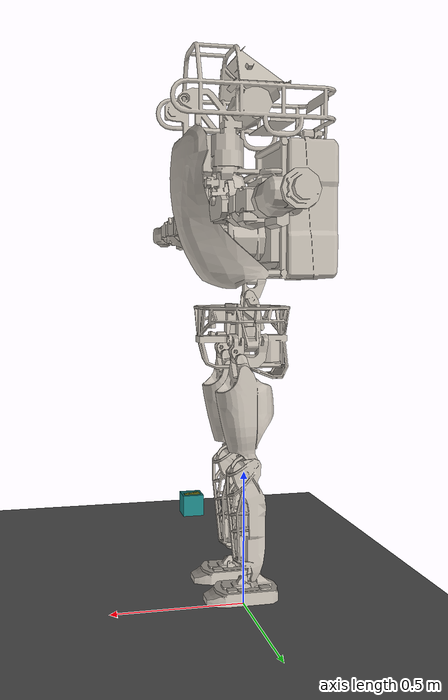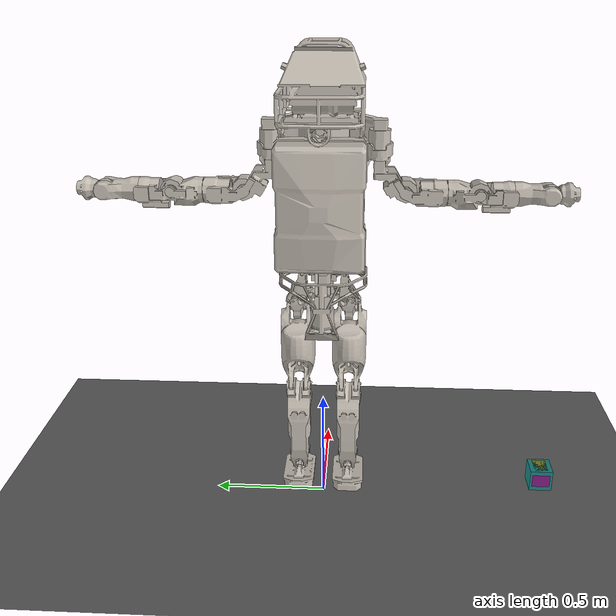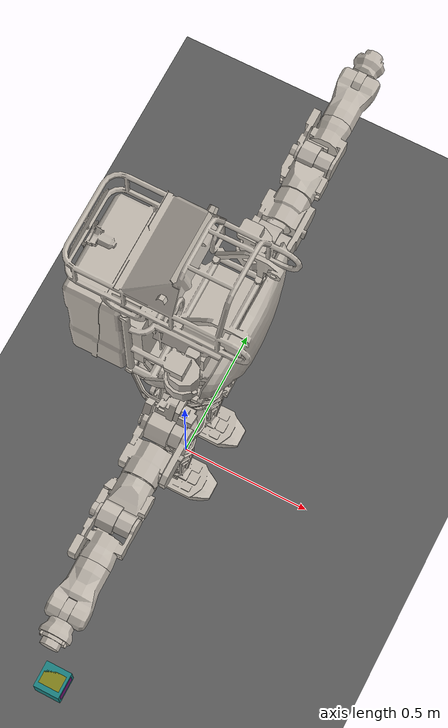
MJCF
<mujoco model="atlas">
    <compiler angle="radian" meshdir="meshes" autolimits="true" />
    <size njmax="5000" nconmax="10000" />

    <default>
        <light castshadow="false" />
        <default class="visual">
            <geom contype="0" conaffinity="0" group="1" type="mesh" euler="1.57 0 0" />
        </default>
        <default class="collision">
            <geom contype="1" conaffinity="1" friction="1.0 0.3 0.3" rgba="0.5 0.6 0.7 0"
                margin="0.001" group="0" euler="1.57 0 0" />
        </default>
        <joint damping="0.01" armature="0.01" frictionloss="0.01" />
    </default>
    <visual>
        <rgba com="0.502 1.0 0 1.0" fog="0 0 0 1" contactpoint="0.4 0.4 0.4 0.8"
            contactforce="0.0 0.9 0.9 0.5" />
        <scale com="0.05" forcewidth="0.04" contactwidth="0.10" contactheight="0.005"
            selectpoint="0.01" />
        <map force="0.005" />
    </visual>

    <asset>
        <texture type="2d" name="atlas_utorso" file="torso_diffuse_unplugged.png" />
        <material name="atlas_utorso" texture="atlas_utorso" />
        <texture type="2d" name="atlas_leg" file="right_leg_diffuse_unplugged.png" />
        <material name="atlas_leg" texture="atlas_leg" />

        <texture type="2d" name="extremities" file="extremities_diffuse_unplugged.png" />
        <material name="extremities" texture="extremities" />

        <mesh name="l_clav" file="l_clav.dae.obj" />
        <mesh name="l_foot" file="l_foot.dae.obj" />
        <mesh name="l_larm" file="l_larm.dae.obj" />
        <mesh name="l_hand" file="l_hand.dae.obj" />
        <mesh name="l_lglut" file="l_lglut.dae.obj" />
        <mesh name="l_lleg" file="l_lleg.dae.obj" />
        <mesh name="l_scap" file="l_scap.dae.obj" />
        <mesh name="l_talus" file="l_talus.dae.obj" />
        <mesh name="l_uarm" file="l_uarm.dae.obj" />
        <mesh name="l_farm" file="l_farm.dae.obj" />
        <mesh name="l_uglut" file="l_uglut.dae.obj" />
        <mesh name="l_uleg" file="l_uleg.dae.obj" />
        <mesh name="ltorso" file="ltorso.dae.obj" />
        <mesh name="mtorso" file="mtorso.dae.obj" />
        <mesh name="pelvis" file="pelvis.dae.obj" />
        <mesh name="r_clav" file="r_clav.dae.obj" />
        <mesh name="r_foot" file="r_foot.dae.obj" />
        <mesh name="r_larm" file="r_larm.dae.obj" />
        <mesh name="r_hand" file="r_hand.dae.obj" />
        <mesh name="r_lglut" file="r_lglut.dae.obj" />
        <mesh name="r_lleg" file="r_lleg.dae.obj" />
        <mesh name="r_scap" file="r_scap.dae.obj" />
        <mesh name="r_talus" file="r_talus.dae.obj" />
        <mesh name="r_uarm" file="r_uarm.dae.obj" />
        <mesh name="r_farm" file="r_farm.dae.obj" />
        <mesh name="r_uglut" file="r_uglut.dae.obj" />
        <mesh name="r_uleg" file="r_uleg.dae.obj" />
        <mesh name="utorso" file="utorso.dae.obj" />

        <texture type="skybox" builtin="gradient" width="512" height="512" rgb1=".4 .6 .8"
            rgb2="0 0 0" />
        <texture name="texgeom" type="cube" builtin="flat" mark="cross" width="128"
            height="128"
            rgb1="0.6 0.6 0.6" rgb2="0.6 0.6 0.6" markrgb="1 1 1" />
        <texture name="texplane" type="2d" builtin="checker" rgb1=".4 .4 .4" rgb2=".6 .6 .6"
            width="512" height="512" />
        <material name='MatPlane' reflectance='0.3' texture="texplane" texrepeat="1 1"
            texuniform="true"
            rgba=".7 .7 .7 1" />
    </asset>
    <option timestep="0.0005" />

    <worldbody>
        <light directional="true" diffuse=".8 .8 .8" pos="0 0 10" dir="0 0 -10" />
        <geom name="floor" pos="0 0 0" type="plane" size="0 0 1" material="MatPlane" />
        <camera name="track" mode="targetbody" target="pelvis" pos="0 -1.3 1.6"
            xyaxes="1 0 0 0 0.707 0.707" />

        <body name="pelvis" pos="0 0 1">
            <joint type="free" limited='false' damping="0" stiffness="0" armature="0" />

            <inertial pos="0.0111 0 0.0271" quat="0.698584 0.713914 0.0424837 -0.0224092"
                mass="17.882" diaginertia="0.124488 0.116646 0.0957666" />
            <geom class="visual" type="mesh" mesh="pelvis" material="extremities" />
            <site name="imu" pos="0 0 0" />

            <body name="ltorso" pos="-0.0125 0 0">
                <inertial pos="-0.0112984 -3.15366e-06 0.0746835"
                    quat="0.997071 0.000128212 0.076485 -0.00012406" mass="2.409"
                    diaginertia="0.003962 0.00341694 0.00169212" />
                <geom class="visual" type="mesh" mesh="ltorso" material="extremities" />
                <body name="mtorso" pos="0 0 0.162">
                    <inertial pos="-0.00816266 -0.0131245 0.0305974"
                        quat="0.108378 0.49314 0.746335 0.433648" mass="0.69"
                        diaginertia="0.000536243 0.000487378 0.000358057" />
                    <geom class="visual" type="mesh" mesh="mtorso" material="atlas_utorso" />
                    <body name="utorso" pos="0 0 0.05">
                        <inertial pos="-0.0571559 4.12307e-05 0.306477"
                            quat="0.945702 -0.00432926 -0.324953 0.00585631" mass="64.03"
                            diaginertia="1.74 1.54023 1.06239" />
                        <geom class="visual" mesh="utorso" material="atlas_utorso" />
                        <geom class="collision" type="box" size="0.265 0.265 0.17"
                            pos="-0.03 0 0.23" />
                        <body name="l_clav" pos="0.1406 0.2256 0.4776">
                            <inertial pos="0 0.048 -0.084"
                                quat="0.684588 -0.177029 0.177029 0.684588" mass="3.45"
                                diaginertia="0.011217 0.011 0.00178301" />
                            <joint name="l_arm_shz" pos="0 0 0" axis="0 0 1" limited="true"
                                range="-1.5708 0.785398" damping="0.1" />
                            <geom class="visual" type="mesh" mesh="l_clav" material="extremities" />
                            <body name="l_scap" pos="0 0.11 -0.245">
                                <inertial pos="0 0 0" quat="0.5 0.5 0.5 0.5" mass="3.012"
                                    diaginertia="0.00583 0.00583 0.00319" />
                                <joint name="l_arm_shx" pos="0 0 0" axis="1 0 0" limited="true"
                                    range="-1.5708 1.5708" damping="0.1" />
                                <geom class="visual" type="mesh" mesh="l_scap"
                                    material="extremities" />
                                <body name="l_uarm" pos="0 0.187 -0.016">
                                    <inertial pos="0 -0.065 0" quat="0.707107 0.707107 0 0"
                                        mass="3.388" diaginertia="0.00656 0.00656 0.00358" />
                                    <joint name="l_arm_ely" pos="0 0 0" axis="0 1 0" limited="true"
                                        range="0 3.14159" damping="0.1" />
                                    <geom class="visual" type="mesh" mesh="l_uarm"
                                        material="extremities" />
                                    <body name="l_larm" pos="0 0.119 0.0092">
                                        <inertial pos="0 0 0" quat="0.5 0.5 0.5 0.5" mass="2.509"
                                            diaginertia="0.00446 0.00446 0.00265" />
                                        <joint name="l_arm_elx" pos="0 0 0" axis="1 0 0"
                                            limited="true" range="0 2.35619" damping="0.1" />
                                        <geom class="visual" type="mesh" mesh="l_larm"
                                            material="extremities" />
                                        <geom class="collision" type="cylinder" size="0.05 0.15"
                                            pos="0 0.15 0" />
                                        <body name="l_ufarm" pos="0 0.29955 -0.00921">
                                            <inertial pos="0 -0.2 0" quat="0.707107 0.707107 0 0"
                                                mass="2.12" diaginertia="0.006 0.006 0.003" />
                                            <joint name="l_arm_wry" pos="0 0 0" axis="0 1 0"
                                                limited="true" range="-3.011 3.011" damping="0.1" />
                                            <geom class="visual" type="mesh" mesh="l_farm"
                                                material="extremities" />
                                            <body name="l_lfarm" pos="0 0 0">
                                                <inertial pos="0 -0.07 0"
                                                    quat="0.707107 0.707107 0 0" mass="2.65"
                                                    diaginertia="0.007 0.007 0.004" />
                                                <joint name="l_arm_wrx" pos="0 0 0" axis="1 0 0"
                                                    limited="true" range="-1.7628 1.7628"
                                                    damping="0.1" />
                                                <geom class="visual" type="mesh" mesh="l_hand"
                                                    material="extremities" />
                                                <body name="l_hand" pos="0 0 0">
                                                    <inertial pos="0 0.06 0" quat="0.5 0.5 0.5 0.5"
                                                        mass="0.53"
                                                        diaginertia="0.000446 0.000446 0.000265" />
                                                    <joint name="l_arm_wry2" pos="0 0 0"
                                                        axis="0 1 0" limited="true"
                                                        range="-2.9671 2.9671" damping="0.1" />
                                                </body>
                                            </body>
                                        </body>
                                    </body>
                                </body>
                            </body>
                        </body>
                        <body name="r_clav" pos="0.1406 -0.2256 0.4776">
                            <inertial pos="0 -0.048 -0.084"
                                quat="0.684588 0.177029 -0.177029 0.684588" mass="3.45"
                                diaginertia="0.011217 0.011 0.00178301" />
                            <joint name="r_arm_shz" pos="0 0 0" axis="0 0 1" limited="true"
                                range="-0.785398 1.5708" damping="0.1" />
                            <geom class="visual" type="mesh" mesh="r_clav" material="extremities" />
                            <body name="r_scap" pos="0 -0.11 -0.245">
                                <inertial pos="0 0 0" quat="0.5 0.5 0.5 0.5" mass="3.012"
                                    diaginertia="0.00583 0.00583 0.00319" />
                                <joint name="r_arm_shx" pos="0 0 0" axis="1 0 0" limited="true"
                                    range="-1.5708 1.5708" damping="0.1" />
                                <geom class="visual" type="mesh" mesh="r_scap"
                                    material="extremities" />
                                <body name="r_uarm" pos="0 -0.187 -0.016">
                                    <inertial pos="0 0.065 0" quat="0.707107 0.707107 0 0"
                                        mass="3.388" diaginertia="0.00656 0.00656 0.00358" />
                                    <joint name="r_arm_ely" pos="0 0 0" axis="0 1 0" limited="true"
                                        range="0 3.14159" damping="0.1" />
                                    <geom class="visual" type="mesh" mesh="r_uarm"
                                        material="extremities" />
                                    <body name="r_larm" pos="0 -0.119 0.0092">
                                        <inertial pos="0 0 0" quat="0.5 0.5 0.5 0.5" mass="2.509"
                                            diaginertia="0.00446 0.00446 0.00265" />
                                        <joint name="r_arm_elx" pos="0 0 0" axis="1 0 0"
                                            limited="true" range="-2.35619 0" damping="0.1" />
                                        <geom class="visual" type="mesh" mesh="r_larm"
                                            material="extremities" />
                                        <geom class="collision" type="cylinder" size="0.05 0.15"
                                            pos="0 -0.15 0" />
                                        <body name="r_ufarm" pos="0 -0.29955 -0.00921">
                                            <inertial pos="0 0.2 0" quat="0.707107 0.707107 0 0"
                                                mass="2.12" diaginertia="0.006 0.006 0.003" />
                                            <joint name="r_arm_wry" pos="0 0 0" axis="0 1 0"
                                                limited="true" range="-3.011 3.011" damping="0.1" />
                                            <geom class="visual" type="mesh" mesh="r_farm"
                                                material="extremities" />
                                            <body name="r_lfarm" pos="0 0 0">
                                                <inertial pos="0 0.07 0"
                                                    quat="0.707107 0.707107 0 0" mass="2.65"
                                                    diaginertia="0.007 0.007 0.004" />
                                                <joint name="r_arm_wrx" pos="0 0 0" axis="1 0 0"
                                                    limited="true" range="-1.7628 1.7628"
                                                    damping="0.1" />
                                                <geom class="visual" type="mesh" mesh="r_hand"
                                                    material="extremities" />
                                                <body name="r_hand" pos="0 0 0">
                                                    <inertial pos="0 -0.06 0" quat="0.5 0.5 0.5 0.5"
                                                        mass="0.53"
                                                        diaginertia="0.000446 0.000446 0.000265" />
                                                    <joint name="r_arm_wry2" pos="0 0 0"
                                                        axis="0 1 0" limited="true"
                                                        range="-2.9671 2.9671" damping="0.1" />
                                                </body>
                                            </body>
                                        </body>
                                    </body>
                                </body>
                            </body>
                        </body>
                    </body>
                </body>
            </body>
            <body name="l_uglut" pos="0 0.089 0">
                <inertial pos="0.00529262 -0.00344732 0.00313046"
                    quat="0.999122 -7.72169e-05 0.0419028 -0.000305187" mass="0.648"
                    diaginertia="0.000745109 0.000688179 0.000410071" />
                <joint name="l_leg_hpz" pos="0 0 0" axis="0 0 1" limited="true"
                    range="-0.174358 0.786794" damping="0.1" />
                <geom class="visual" type="mesh" mesh="l_uglut" material="extremities" />
                <body name="l_lglut" pos="0 0 0">
                    <inertial pos="0.0133341 0.0170484 -0.0312052"
                        quat="0.353465 0.600383 0.388609 0.602981" mass="0.866"
                        diaginertia="0.00133867 0.000995812 0.000690275" />
                    <joint name="l_leg_hpx" pos="0 0 0" axis="1 0 0" limited="true"
                        range="-0.523599 0.523599" damping="0.1" />
                    <geom class="visual" type="mesh" mesh="l_lglut" material="extremities" />
                    <body name="l_uleg" pos="0.05 0.0225 -0.066">
                        <inertial pos="0 0 -0.21" mass="9.209" diaginertia="0.09 0.09 0.02" />
                        <joint name="l_leg_hpy" pos="0 0 0" axis="0 1 0" limited="true"
                            range="-1.61234 0.65764" damping="0.1" />
                        <geom class="visual" mesh="l_uleg" material="extremities" />
                        <geom class="collision" type="ellipsoid" size="0.12 0.08 0.2" euler="0 0 0"
                            pos="-0.03 0 -0.17" />
                        <body name="l_lleg" pos="-0.05 0 -0.374">
                            <inertial pos="0.001 0 -0.187" quat="0.999751 0 0.0223266 0"
                                mass="5.479" diaginertia="0.0771341 0.076 0.00986594" />
                            <joint name="l_leg_kny" pos="0 0 0" axis="0 1 0" limited="true"
                                range="0 2.35637" damping="0.1" />
                            <geom class="visual" type="mesh" mesh="l_lleg" material="extremities" />
                            <geom class="collision" type="ellipsoid" size="0.07 0.07 0.2"
                                euler="0 0 0" pos="0.02 0 -0.20" />
                            <body name="l_talus" pos="0 0 -0.422">
                                <inertial pos="0 0 0" quat="0.5 0.5 -0.5 0.5" mass="0.125"
                                    diaginertia="1.30101e-05 1.01674e-05 8.42775e-06" />
                                <joint name="l_leg_aky" pos="0 0 0" axis="0 1 0" limited="true"
                                    range="-1 0.7" damping="0.1" />
                                <geom class="visual" type="mesh" mesh="l_talus"
                                    material="extremities" />
                                <body name="l_foot" pos="0 0 0">
                                    <inertial pos="0.027 0 -0.067" quat="0 0.707107 0 0.707107"
                                        mass="2.05" diaginertia="0.008 0.007 0.002" />
                                    <joint name="l_leg_akx" pos="0 0 0" axis="1 0 0" limited="true"
                                        range="-0.8 0.8" damping="0.1" />
                                    <geom class="visual" type="mesh" mesh="l_foot"
                                        material="extremities" />
                                    <geom class="collision" type="box" size="0.115 0.065 0.01"
                                        pos="0.03 0 -0.0641" euler="0 0 0" />
                                    <site name="lf_tc" type="box" size="0.13 0.07 0.01"
                                        pos="0.04 0 -0.0675"
                                        rgba="0 1 0 0" />
                                </body>
                            </body>
                        </body>
                    </body>
                </body>
            </body>
            <body name="r_uglut" pos="0 -0.089 0">
                <inertial pos="0.00529262 0.00344732 0.00313046"
                    quat="0.999122 7.72169e-05 0.0419028 0.000305187" mass="0.648"
                    diaginertia="0.000745109 0.000688179 0.000410071" />
                <joint name="r_leg_hpz" pos="0 0 0" axis="0 0 1" limited="true"
                    range="-0.786794 0.174358" damping="0.1" />
                <geom class="visual" type="mesh" mesh="r_uglut" material="extremities" />
                <body name="r_lglut" pos="0 0 0">
                    <inertial pos="0.0133341 -0.0170484 -0.0312052"
                        quat="0.602981 0.388609 0.600383 0.353465" mass="0.866"
                        diaginertia="0.00133867 0.000995812 0.000690275" />
                    <joint name="r_leg_hpx" pos="0 0 0" axis="1 0 0" limited="true"
                        range="-0.523599 0.523599" damping="0.1" />
                    <geom class="visual" type="mesh" mesh="r_lglut" material="extremities" />
                    <body name="r_uleg" pos="0.05 -0.0225 -0.066">
                        <inertial pos="0 0 -0.21" mass="9.209" diaginertia="0.09 0.09 0.02" />
                        <joint name="r_leg_hpy" pos="0 0 0" axis="0 1 0" limited="true"
                            range="-1.61234 0.65764" damping="0.1" />
                        <geom class="visual" mesh="r_uleg" euler="1.57 0 0" material="atlas_leg" />
                        <geom class="collision" type="ellipsoid" size="0.12 0.08 0.2" euler="0 0 0"
                            pos="-0.03 0 -0.17" />
                        <body name="r_lleg" pos="-0.05 0 -0.374">
                            <inertial pos="0.001 0 -0.187" quat="0.999751 0 0.0223266 0"
                                mass="5.479" diaginertia="0.0771341 0.076 0.00986594" />
                            <joint name="r_leg_kny" pos="0 0 0" axis="0 1 0" limited="true"
                                range="0 2.35637" damping="0.1" />
                            <geom class="visual" type="mesh" mesh="r_lleg" material="extremities" />
                            <geom class="collision" type="ellipsoid" size="0.07 0.07 0.2"
                                euler="0 0 0" pos="0.02 0 -0.20" />

                            <body name="r_talus" pos="0 0 -0.422">
                                <inertial pos="0 0 0" quat="0.5 0.5 -0.5 0.5" mass="0.125"
                                    diaginertia="1.30101e-05 1.01674e-05 8.42775e-06" />
                                <joint name="r_leg_aky" pos="0 0 0" axis="0 1 0" limited="true"
                                    range="-1 0.7" damping="0.1" />
                                <geom class="visual" type="mesh" mesh="r_talus"
                                    material="extremities" />
                                <body name="r_foot" pos="0 0 0">
                                    <inertial pos="0.027 0 -0.067" quat="0 0.707107 0 0.707107"
                                        mass="2.05" diaginertia="0.008 0.007 0.002" />
                                    <joint name="r_leg_akx" pos="0 0 0" axis="1 0 0" limited="true"
                                        range="-0.8 0.8" damping="0.1" />
                                    <geom class="collision" type="box" size="0.115 0.065 0.01"
                                        pos="0.03 0 -0.0641" euler="0 0 0" />
                                    <geom class="visual" type="mesh" mesh="r_foot"
                                        material="extremities" />
                                    <site name="rf_tc" type="box" size="0.13 0.07 0.01"
                                        pos="0.04 0 -0.0675"
                                        rgba="0 1 0 0" />
                                </body>
                            </body>
                        </body>
                    </body>
                </body>
            </body>
        </body>

        <body name="throw_box1" pos="0.0 -1.0 0.12" gravcomp="0">
            <inertial pos="0 0 0" quat="1 0 0 0" mass="8.607" diaginertia="0.0012 0.0012 0.0012" />
            <geom class="collision" size="0.05 0.05 0.05" type="box" rgba="0.1 0.5 0.5 1" />
            <joint name="throw_box1" type="free" />
        </body>

        <body name="throw_box2" pos="0.0 -1.0 0.12" gravcomp="0">
            <inertial pos="0 0 0" quat="1 0 0 0" mass="8.607" diaginertia="0.0012 0.0012 0.0012" />
            <geom class="collision" size="0.05 0.03 0.04" type="box" rgba="0.5 0.1 0.5 1" />
            <joint name="throw_box2" type="free" />
        </body>

        <body name="throw_box3" pos="0.0 -1.0 0.12" gravcomp="0">
            <inertial pos="0 0 0" quat="1 0 0 0" mass="8.607" diaginertia="0.0012 0.0012 0.0012" />
            <geom class="collision" size="0.04 0.05 0.03" type="box" rgba="0.5 0.5 0.1 1" />
            <joint name="throw_box3" type="free" />
        </body>

        <body name="throw_box4" pos="0.0 -1.0 0.12" gravcomp="0">
            <inertial pos="0 0 0" quat="1 0 0 0" mass="8.607" diaginertia="0.0012 0.0012 0.0012" />
            <geom class="collision" size="0.04 0.04 0.04" type="box" rgba="0.9 0.5 0.9 1" />
            <joint name="throw_box4" type="free" />
        </body>

    </worldbody>

    <actuator>

        <motor name="l_arm_shz" joint="l_arm_shz" gear="1" />
        <motor name="l_arm_shx" joint="l_arm_shx" gear="1" />
        <motor name="l_arm_ely" joint="l_arm_ely" gear="1" />
        <motor name="l_arm_elx" joint="l_arm_elx" gear="1" />
        <motor name="l_arm_wry" joint="l_arm_wry" gear="1" />
        <motor name="l_arm_wrx" joint="l_arm_wrx" gear="1" />
        <motor name="l_arm_wry2" joint="l_arm_wry2" gear="1" />

        <motor name="r_arm_shz" joint="r_arm_shz" gear="1" />
        <motor name="r_arm_shx" joint="r_arm_shx" gear="1" />
        <motor name="r_arm_ely" joint="r_arm_ely" gear="1" />
        <motor name="r_arm_elx" joint="r_arm_elx" gear="1" />
        <motor name="r_arm_wry" joint="r_arm_wry" gear="1" />
        <motor name="r_arm_wrx" joint="r_arm_wrx" gear="1" />
        <motor name="r_arm_wry2" joint="r_arm_wry2" gear="1" />

        <motor name="l_leg_hpz" joint="l_leg_hpz" gear="1" />
        <motor name="l_leg_hpx" joint="l_leg_hpx" gear="1" />
        <motor name="l_leg_hpy" joint="l_leg_hpy" gear="1" />
        <motor name="l_leg_kny" joint="l_leg_kny" gear="1" />
        <motor name="l_leg_aky" joint="l_leg_aky" gear="1" />
        <motor name="l_leg_akx" joint="l_leg_akx" gear="1" />

        <motor name="r_leg_hpz" joint="r_leg_hpz" gear="1" />
        <motor name="r_leg_hpx" joint="r_leg_hpx" gear="1" />
        <motor name="r_leg_hpy" joint="r_leg_hpy" gear="1" />
        <motor name="r_leg_kny" joint="r_leg_kny" gear="1" />
        <motor name="r_leg_aky" joint="r_leg_aky" gear="1" />
        <motor name="r_leg_akx" joint="r_leg_akx" gear="1" />

    </actuator>

    <sensor>
        <framequat name="Body_Quat" objtype="site" objname="imu" />
        <gyro name="Body_Gyro" site="imu" />
        <accelerometer name="Body_Acc" site="imu" />

        <jointpos name="l_arm_shz_pos" joint="l_arm_shz" />
        <jointpos name="l_arm_shx_pos" joint="l_arm_shx" />
        <jointpos name="l_arm_ely_pos" joint="l_arm_ely" />
        <jointpos name="l_arm_elx_pos" joint="l_arm_elx" />
        <jointpos name="l_arm_wry_pos" joint="l_arm_wry" />
        <jointpos name="l_arm_wrx_pos" joint="l_arm_wrx" />
        <jointpos name="l_arm_wry2_pos" joint="l_arm_wry2" />

        <jointpos name="r_arm_shz_pos" joint="r_arm_shz" />
        <jointpos name="r_arm_shx_pos" joint="r_arm_shx" />
        <jointpos name="r_arm_ely_pos" joint="r_arm_ely" />
        <jointpos name="r_arm_elx_pos" joint="r_arm_elx" />
        <jointpos name="r_arm_wry_pos" joint="r_arm_wry" />
        <jointpos name="r_arm_wrx_pos" joint="r_arm_wrx" />
        <jointpos name="r_arm_wry2_pos" joint="r_arm_wry2" />

        <jointpos name="l_leg_hpz_pos" joint="l_leg_hpz" />
        <jointpos name="l_leg_hpx_pos" joint="l_leg_hpx" />
        <jointpos name="l_leg_hpy_pos" joint="l_leg_hpy" />
        <jointpos name="l_leg_kny_pos" joint="l_leg_kny" />
        <jointpos name="l_leg_aky_pos" joint="l_leg_aky" />
        <jointpos name="l_leg_akx_pos" joint="l_leg_akx" />

        <jointpos name="r_leg_hpz_pos" joint="r_leg_hpz" />
        <jointpos name="r_leg_hpx_pos" joint="r_leg_hpx" />
        <jointpos name="r_leg_hpy_pos" joint="r_leg_hpy" />
        <jointpos name="r_leg_kny_pos" joint="r_leg_kny" />
        <jointpos name="r_leg_aky_pos" joint="r_leg_aky" />
        <jointpos name="r_leg_akx_pos" joint="r_leg_akx" />

        <jointvel name="l_arm_shz_vel" joint="l_arm_shz" />
        <jointvel name="l_arm_shx_vel" joint="l_arm_shx" />
        <jointvel name="l_arm_ely_vel" joint="l_arm_ely" />
        <jointvel name="l_arm_elx_vel" joint="l_arm_elx" />
        <jointvel name="l_arm_wry_vel" joint="l_arm_wry" />
        <jointvel name="l_arm_wrx_vel" joint="l_arm_wrx" />
        <jointvel name="l_arm_wry2_vel" joint="l_arm_wry2" />

        <jointvel name="r_arm_shz_vel" joint="r_arm_shz" />
        <jointvel name="r_arm_shx_vel" joint="r_arm_shx" />
        <jointvel name="r_arm_ely_vel" joint="r_arm_ely" />
        <jointvel name="r_arm_elx_vel" joint="r_arm_elx" />
        <jointvel name="r_arm_wry_vel" joint="r_arm_wry" />
        <jointvel name="r_arm_wrx_vel" joint="r_arm_wrx" />
        <jointvel name="r_arm_wry2_vel" joint="r_arm_wry2" />

        <jointvel name="l_leg_hpz_vel" joint="l_leg_hpz" />
        <jointvel name="l_leg_hpx_vel" joint="l_leg_hpx" />
        <jointvel name="l_leg_hpy_vel" joint="l_leg_hpy" />
        <jointvel name="l_leg_kny_vel" joint="l_leg_kny" />
        <jointvel name="l_leg_aky_vel" joint="l_leg_aky" />
        <jointvel name="l_leg_akx_vel" joint="l_leg_akx" />

        <jointvel name="r_leg_hpz_vel" joint="r_leg_hpz" />
        <jointvel name="r_leg_hpx_vel" joint="r_leg_hpx" />
        <jointvel name="r_leg_hpy_vel" joint="r_leg_hpy" />
        <jointvel name="r_leg_kny_vel" joint="r_leg_kny" />
        <jointvel name="r_leg_aky_vel" joint="r_leg_aky" />
        <jointvel name="r_leg_akx_vel" joint="r_leg_akx" />

        <touch name="lf_touch" site="lf_tc" />
        <touch name="rf_touch" site="rf_tc" />
    </sensor>

</mujoco>
